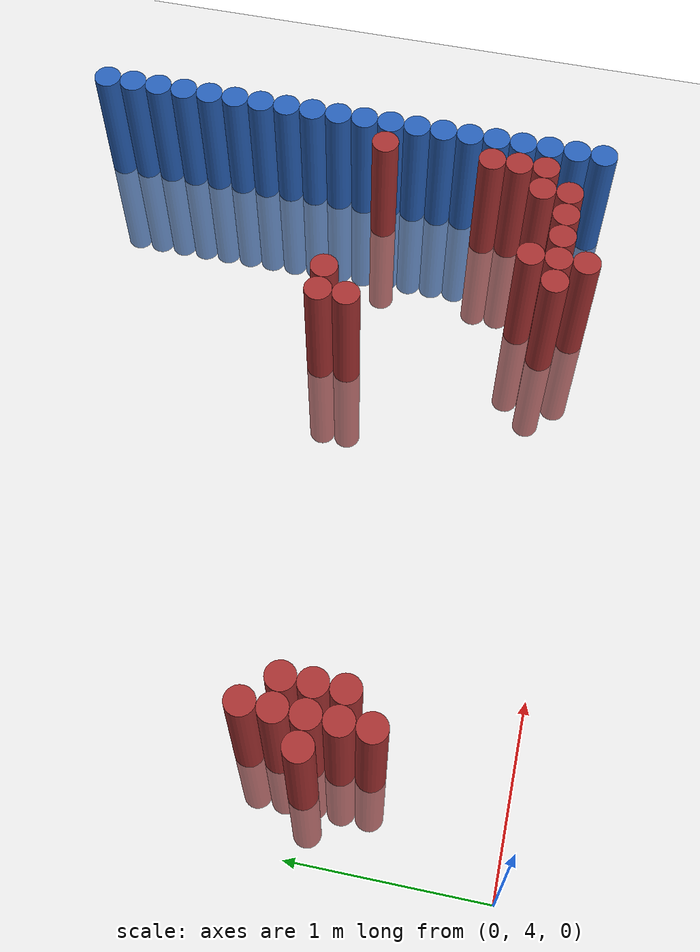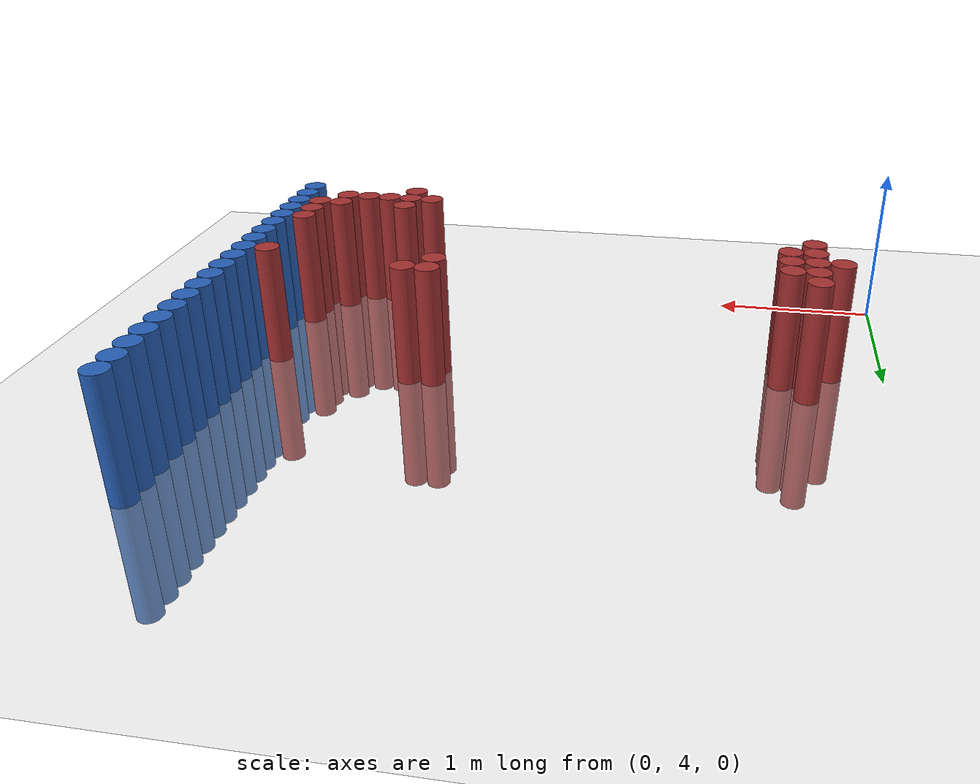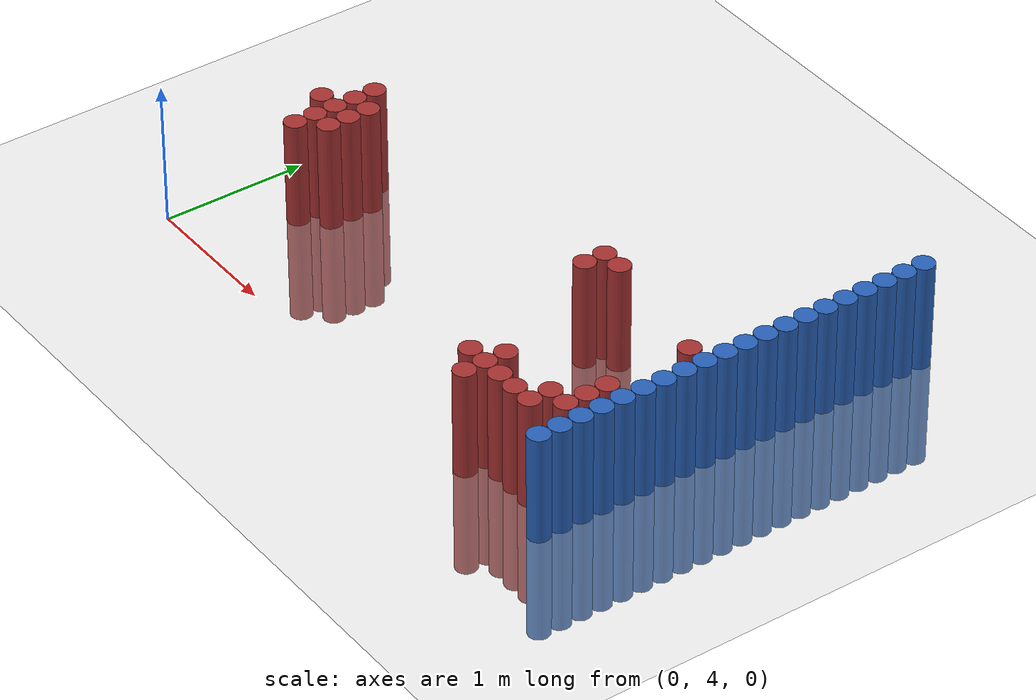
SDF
<sdf version="1.6">
 <world name="default">
  <model name="ground_plane">
   <static>1</static>
   <link name="link">
    <collision name="collision">
     <geometry><plane><normal>0 0 1</normal><size>100 100</size></plane></geometry>
     <surface><friction><ode><mu>100</mu><mu2>50</mu2></ode></friction></surface>
    </collision>
    <visual name="visual">
     <cast_shadows>0</cast_shadows>
     <geometry><plane><normal>0 0 1</normal><size>100 100</size></plane></geometry>
     <material>
      <script><uri>file://media/materials/scripts/gazebo.material</uri><name>Gazebo/Grey</name></script>
     </material>
    </visual>
   </link>
  </model>
  <model name="unit_cylinder_168">
   <static>1</static>
   <pose>3.925000 4.075000 0.000000 0.000000 0.000000 0.000000</pose>
   <link name="link">
    <inertial>
     <mass>1</mass>
     <inertia><ixx>0.145833</ixx><ixy>0</ixy><ixz>0</ixz><iyy>0.145833</iyy><iyz>0</iyz><izz>0.125</izz></inertia>
    </inertial>
    <collision name="collision">
     <geometry><cylinder><radius>0.075000</radius><length>1.5</length></cylinder></geometry>
    </collision>
    <visual name="visual">
     <geometry><cylinder><radius>0.075000</radius><length>1.5</length></cylinder></geometry>
     <material>
      <ambient>0.152000 0.379000 0.720000 1</ambient>
      <diffuse>0.152000 0.379000 0.720000 1</diffuse>
     </material>
     <material>
      <script><name>Gazebo/Grey</name><uri>file://media/materials/scripts/gazebo.material</uri></script>
     </material>
    </visual>
   </link>
  </model>
  <model name="unit_cylinder_170">
   <static>1</static>
   <pose>3.925000 4.225000 0.000000 0.000000 0.000000 0.000000</pose>
   <link name="link">
    <inertial>
     <mass>1</mass>
     <inertia><ixx>0.145833</ixx><ixy>0</ixy><ixz>0</ixz><iyy>0.145833</iyy><iyz>0</iyz><izz>0.125</izz></inertia>
    </inertial>
    <collision name="collision">
     <geometry><cylinder><radius>0.075000</radius><length>1.5</length></cylinder></geometry>
    </collision>
    <visual name="visual">
     <geometry><cylinder><radius>0.075000</radius><length>1.5</length></cylinder></geometry>
     <material>
      <ambient>0.152000 0.379000 0.720000 1</ambient>
      <diffuse>0.152000 0.379000 0.720000 1</diffuse>
     </material>
     <material>
      <script><name>Gazebo/Grey</name><uri>file://media/materials/scripts/gazebo.material</uri></script>
     </material>
    </visual>
   </link>
  </model>
  <model name="unit_cylinder_172">
   <static>1</static>
   <pose>3.925000 4.375000 0.000000 0.000000 0.000000 0.000000</pose>
   <link name="link">
    <inertial>
     <mass>1</mass>
     <inertia><ixx>0.145833</ixx><ixy>0</ixy><ixz>0</ixz><iyy>0.145833</iyy><iyz>0</iyz><izz>0.125</izz></inertia>
    </inertial>
    <collision name="collision">
     <geometry><cylinder><radius>0.075000</radius><length>1.5</length></cylinder></geometry>
    </collision>
    <visual name="visual">
     <geometry><cylinder><radius>0.075000</radius><length>1.5</length></cylinder></geometry>
     <material>
      <ambient>0.152000 0.379000 0.720000 1</ambient>
      <diffuse>0.152000 0.379000 0.720000 1</diffuse>
     </material>
     <material>
      <script><name>Gazebo/Grey</name><uri>file://media/materials/scripts/gazebo.material</uri></script>
     </material>
    </visual>
   </link>
  </model>
  <model name="unit_cylinder_174">
   <static>1</static>
   <pose>3.925000 4.525000 0.000000 0.000000 0.000000 0.000000</pose>
   <link name="link">
    <inertial>
     <mass>1</mass>
     <inertia><ixx>0.145833</ixx><ixy>0</ixy><ixz>0</ixz><iyy>0.145833</iyy><iyz>0</iyz><izz>0.125</izz></inertia>
    </inertial>
    <collision name="collision">
     <geometry><cylinder><radius>0.075000</radius><length>1.5</length></cylinder></geometry>
    </collision>
    <visual name="visual">
     <geometry><cylinder><radius>0.075000</radius><length>1.5</length></cylinder></geometry>
     <material>
      <ambient>0.152000 0.379000 0.720000 1</ambient>
      <diffuse>0.152000 0.379000 0.720000 1</diffuse>
     </material>
     <material>
      <script><name>Gazebo/Grey</name><uri>file://media/materials/scripts/gazebo.material</uri></script>
     </material>
    </visual>
   </link>
  </model>
  <model name="unit_cylinder_176">
   <static>1</static>
   <pose>3.925000 4.675000 0.000000 0.000000 0.000000 0.000000</pose>
   <link name="link">
    <inertial>
     <mass>1</mass>
     <inertia><ixx>0.145833</ixx><ixy>0</ixy><ixz>0</ixz><iyy>0.145833</iyy><iyz>0</iyz><izz>0.125</izz></inertia>
    </inertial>
    <collision name="collision">
     <geometry><cylinder><radius>0.075000</radius><length>1.5</length></cylinder></geometry>
    </collision>
    <visual name="visual">
     <geometry><cylinder><radius>0.075000</radius><length>1.5</length></cylinder></geometry>
     <material>
      <ambient>0.152000 0.379000 0.720000 1</ambient>
      <diffuse>0.152000 0.379000 0.720000 1</diffuse>
     </material>
     <material>
      <script><name>Gazebo/Grey</name><uri>file://media/materials/scripts/gazebo.material</uri></script>
     </material>
    </visual>
   </link>
  </model>
  <model name="unit_cylinder_178">
   <static>1</static>
   <pose>3.925000 4.825000 0.000000 0.000000 0.000000 0.000000</pose>
   <link name="link">
    <inertial>
     <mass>1</mass>
     <inertia><ixx>0.145833</ixx><ixy>0</ixy><ixz>0</ixz><iyy>0.145833</iyy><iyz>0</iyz><izz>0.125</izz></inertia>
    </inertial>
    <collision name="collision">
     <geometry><cylinder><radius>0.075000</radius><length>1.5</length></cylinder></geometry>
    </collision>
    <visual name="visual">
     <geometry><cylinder><radius>0.075000</radius><length>1.5</length></cylinder></geometry>
     <material>
      <ambient>0.152000 0.379000 0.720000 1</ambient>
      <diffuse>0.152000 0.379000 0.720000 1</diffuse>
     </material>
     <material>
      <script><name>Gazebo/Grey</name><uri>file://media/materials/scripts/gazebo.material</uri></script>
     </material>
    </visual>
   </link>
  </model>
  <model name="unit_cylinder_180">
   <static>1</static>
   <pose>3.925000 4.975000 0.000000 0.000000 0.000000 0.000000</pose>
   <link name="link">
    <inertial>
     <mass>1</mass>
     <inertia><ixx>0.145833</ixx><ixy>0</ixy><ixz>0</ixz><iyy>0.145833</iyy><iyz>0</iyz><izz>0.125</izz></inertia>
    </inertial>
    <collision name="collision">
     <geometry><cylinder><radius>0.075000</radius><length>1.5</length></cylinder></geometry>
    </collision>
    <visual name="visual">
     <geometry><cylinder><radius>0.075000</radius><length>1.5</length></cylinder></geometry>
     <material>
      <ambient>0.152000 0.379000 0.720000 1</ambient>
      <diffuse>0.152000 0.379000 0.720000 1</diffuse>
     </material>
     <material>
      <script><name>Gazebo/Grey</name><uri>file://media/materials/scripts/gazebo.material</uri></script>
     </material>
    </visual>
   </link>
  </model>
  <model name="unit_cylinder_182">
   <static>1</static>
   <pose>3.925000 5.125000 0.000000 0.000000 0.000000 0.000000</pose>
   <link name="link">
    <inertial>
     <mass>1</mass>
     <inertia><ixx>0.145833</ixx><ixy>0</ixy><ixz>0</ixz><iyy>0.145833</iyy><iyz>0</iyz><izz>0.125</izz></inertia>
    </inertial>
    <collision name="collision">
     <geometry><cylinder><radius>0.075000</radius><length>1.5</length></cylinder></geometry>
    </collision>
    <visual name="visual">
     <geometry><cylinder><radius>0.075000</radius><length>1.5</length></cylinder></geometry>
     <material>
      <ambient>0.152000 0.379000 0.720000 1</ambient>
      <diffuse>0.152000 0.379000 0.720000 1</diffuse>
     </material>
     <material>
      <script><name>Gazebo/Grey</name><uri>file://media/materials/scripts/gazebo.material</uri></script>
     </material>
    </visual>
   </link>
  </model>
  <model name="unit_cylinder_184">
   <static>1</static>
   <pose>3.925000 5.275000 0.000000 0.000000 0.000000 0.000000</pose>
   <link name="link">
    <inertial>
     <mass>1</mass>
     <inertia><ixx>0.145833</ixx><ixy>0</ixy><ixz>0</ixz><iyy>0.145833</iyy><iyz>0</iyz><izz>0.125</izz></inertia>
    </inertial>
    <collision name="collision">
     <geometry><cylinder><radius>0.075000</radius><length>1.5</length></cylinder></geometry>
    </collision>
    <visual name="visual">
     <geometry><cylinder><radius>0.075000</radius><length>1.5</length></cylinder></geometry>
     <material>
      <ambient>0.152000 0.379000 0.720000 1</ambient>
      <diffuse>0.152000 0.379000 0.720000 1</diffuse>
     </material>
     <material>
      <script><name>Gazebo/Grey</name><uri>file://media/materials/scripts/gazebo.material</uri></script>
     </material>
    </visual>
   </link>
  </model>
  <model name="unit_cylinder_186">
   <static>1</static>
   <pose>3.925000 5.425000 0.000000 0.000000 0.000000 0.000000</pose>
   <link name="link">
    <inertial>
     <mass>1</mass>
     <inertia><ixx>0.145833</ixx><ixy>0</ixy><ixz>0</ixz><iyy>0.145833</iyy><iyz>0</iyz><izz>0.125</izz></inertia>
    </inertial>
    <collision name="collision">
     <geometry><cylinder><radius>0.075000</radius><length>1.5</length></cylinder></geometry>
    </collision>
    <visual name="visual">
     <geometry><cylinder><radius>0.075000</radius><length>1.5</length></cylinder></geometry>
     <material>
      <ambient>0.152000 0.379000 0.720000 1</ambient>
      <diffuse>0.152000 0.379000 0.720000 1</diffuse>
     </material>
     <material>
      <script><name>Gazebo/Grey</name><uri>file://media/materials/scripts/gazebo.material</uri></script>
     </material>
    </visual>
   </link>
  </model>
  <model name="unit_cylinder_188">
   <static>1</static>
   <pose>3.925000 5.575000 0.000000 0.000000 0.000000 0.000000</pose>
   <link name="link">
    <inertial>
     <mass>1</mass>
     <inertia><ixx>0.145833</ixx><ixy>0</ixy><ixz>0</ixz><iyy>0.145833</iyy><iyz>0</iyz><izz>0.125</izz></inertia>
    </inertial>
    <collision name="collision">
     <geometry><cylinder><radius>0.075000</radius><length>1.5</length></cylinder></geometry>
    </collision>
    <visual name="visual">
     <geometry><cylinder><radius>0.075000</radius><length>1.5</length></cylinder></geometry>
     <material>
      <ambient>0.152000 0.379000 0.720000 1</ambient>
      <diffuse>0.152000 0.379000 0.720000 1</diffuse>
     </material>
     <material>
      <script><name>Gazebo/Grey</name><uri>file://media/materials/scripts/gazebo.material</uri></script>
     </material>
    </visual>
   </link>
  </model>
  <model name="unit_cylinder_190">
   <static>1</static>
   <pose>3.925000 5.725000 0.000000 0.000000 0.000000 0.000000</pose>
   <link name="link">
    <inertial>
     <mass>1</mass>
     <inertia><ixx>0.145833</ixx><ixy>0</ixy><ixz>0</ixz><iyy>0.145833</iyy><iyz>0</iyz><izz>0.125</izz></inertia>
    </inertial>
    <collision name="collision">
     <geometry><cylinder><radius>0.075000</radius><length>1.5</length></cylinder></geometry>
    </collision>
    <visual name="visual">
     <geometry><cylinder><radius>0.075000</radius><length>1.5</length></cylinder></geometry>
     <material>
      <ambient>0.152000 0.379000 0.720000 1</ambient>
      <diffuse>0.152000 0.379000 0.720000 1</diffuse>
     </material>
     <material>
      <script><name>Gazebo/Grey</name><uri>file://media/materials/scripts/gazebo.material</uri></script>
     </material>
    </visual>
   </link>
  </model>
  <model name="unit_cylinder_192">
   <static>1</static>
   <pose>3.925000 5.875000 0.000000 0.000000 0.000000 0.000000</pose>
   <link name="link">
    <inertial>
     <mass>1</mass>
     <inertia><ixx>0.145833</ixx><ixy>0</ixy><ixz>0</ixz><iyy>0.145833</iyy><iyz>0</iyz><izz>0.125</izz></inertia>
    </inertial>
    <collision name="collision">
     <geometry><cylinder><radius>0.075000</radius><length>1.5</length></cylinder></geometry>
    </collision>
    <visual name="visual">
     <geometry><cylinder><radius>0.075000</radius><length>1.5</length></cylinder></geometry>
     <material>
      <ambient>0.152000 0.379000 0.720000 1</ambient>
      <diffuse>0.152000 0.379000 0.720000 1</diffuse>
     </material>
     <material>
      <script><name>Gazebo/Grey</name><uri>file://media/materials/scripts/gazebo.material</uri></script>
     </material>
    </visual>
   </link>
  </model>
  <model name="unit_cylinder_194">
   <static>1</static>
   <pose>3.925000 6.025000 0.000000 0.000000 0.000000 0.000000</pose>
   <link name="link">
    <inertial>
     <mass>1</mass>
     <inertia><ixx>0.145833</ixx><ixy>0</ixy><ixz>0</ixz><iyy>0.145833</iyy><iyz>0</iyz><izz>0.125</izz></inertia>
    </inertial>
    <collision name="collision">
     <geometry><cylinder><radius>0.075000</radius><length>1.5</length></cylinder></geometry>
    </collision>
    <visual name="visual">
     <geometry><cylinder><radius>0.075000</radius><length>1.5</length></cylinder></geometry>
     <material>
      <ambient>0.152000 0.379000 0.720000 1</ambient>
      <diffuse>0.152000 0.379000 0.720000 1</diffuse>
     </material>
     <material>
      <script><name>Gazebo/Grey</name><uri>file://media/materials/scripts/gazebo.material</uri></script>
     </material>
    </visual>
   </link>
  </model>
  <model name="unit_cylinder_196">
   <static>1</static>
   <pose>3.925000 6.175000 0.000000 0.000000 0.000000 0.000000</pose>
   <link name="link">
    <inertial>
     <mass>1</mass>
     <inertia><ixx>0.145833</ixx><ixy>0</ixy><ixz>0</ixz><iyy>0.145833</iyy><iyz>0</iyz><izz>0.125</izz></inertia>
    </inertial>
    <collision name="collision">
     <geometry><cylinder><radius>0.075000</radius><length>1.5</length></cylinder></geometry>
    </collision>
    <visual name="visual">
     <geometry><cylinder><radius>0.075000</radius><length>1.5</length></cylinder></geometry>
     <material>
      <ambient>0.152000 0.379000 0.720000 1</ambient>
      <diffuse>0.152000 0.379000 0.720000 1</diffuse>
     </material>
     <material>
      <script><name>Gazebo/Grey</name><uri>file://media/materials/scripts/gazebo.material</uri></script>
     </material>
    </visual>
   </link>
  </model>
  <model name="unit_cylinder_198">
   <static>1</static>
   <pose>3.925000 6.325000 0.000000 0.000000 0.000000 0.000000</pose>
   <link name="link">
    <inertial>
     <mass>1</mass>
     <inertia><ixx>0.145833</ixx><ixy>0</ixy><ixz>0</ixz><iyy>0.145833</iyy><iyz>0</iyz><izz>0.125</izz></inertia>
    </inertial>
    <collision name="collision">
     <geometry><cylinder><radius>0.075000</radius><length>1.5</length></cylinder></geometry>
    </collision>
    <visual name="visual">
     <geometry><cylinder><radius>0.075000</radius><length>1.5</length></cylinder></geometry>
     <material>
      <ambient>0.152000 0.379000 0.720000 1</ambient>
      <diffuse>0.152000 0.379000 0.720000 1</diffuse>
     </material>
     <material>
      <script><name>Gazebo/Grey</name><uri>file://media/materials/scripts/gazebo.material</uri></script>
     </material>
    </visual>
   </link>
  </model>
  <model name="unit_cylinder_200">
   <static>1</static>
   <pose>3.925000 6.475000 0.000000 0.000000 0.000000 0.000000</pose>
   <link name="link">
    <inertial>
     <mass>1</mass>
     <inertia><ixx>0.145833</ixx><ixy>0</ixy><ixz>0</ixz><iyy>0.145833</iyy><iyz>0</iyz><izz>0.125</izz></inertia>
    </inertial>
    <collision name="collision">
     <geometry><cylinder><radius>0.075000</radius><length>1.5</length></cylinder></geometry>
    </collision>
    <visual name="visual">
     <geometry><cylinder><radius>0.075000</radius><length>1.5</length></cylinder></geometry>
     <material>
      <ambient>0.152000 0.379000 0.720000 1</ambient>
      <diffuse>0.152000 0.379000 0.720000 1</diffuse>
     </material>
     <material>
      <script><name>Gazebo/Grey</name><uri>file://media/materials/scripts/gazebo.material</uri></script>
     </material>
    </visual>
   </link>
  </model>
  <model name="unit_cylinder_202">
   <static>1</static>
   <pose>3.925000 6.625000 0.000000 0.000000 0.000000 0.000000</pose>
   <link name="link">
    <inertial>
     <mass>1</mass>
     <inertia><ixx>0.145833</ixx><ixy>0</ixy><ixz>0</ixz><iyy>0.145833</iyy><iyz>0</iyz><izz>0.125</izz></inertia>
    </inertial>
    <collision name="collision">
     <geometry><cylinder><radius>0.075000</radius><length>1.5</length></cylinder></geometry>
    </collision>
    <visual name="visual">
     <geometry><cylinder><radius>0.075000</radius><length>1.5</length></cylinder></geometry>
     <material>
      <ambient>0.152000 0.379000 0.720000 1</ambient>
      <diffuse>0.152000 0.379000 0.720000 1</diffuse>
     </material>
     <material>
      <script><name>Gazebo/Grey</name><uri>file://media/materials/scripts/gazebo.material</uri></script>
     </material>
    </visual>
   </link>
  </model>
  <model name="unit_cylinder_204">
   <static>1</static>
   <pose>3.925000 6.775000 0.000000 0.000000 0.000000 0.000000</pose>
   <link name="link">
    <inertial>
     <mass>1</mass>
     <inertia><ixx>0.145833</ixx><ixy>0</ixy><ixz>0</ixz><iyy>0.145833</iyy><iyz>0</iyz><izz>0.125</izz></inertia>
    </inertial>
    <collision name="collision">
     <geometry><cylinder><radius>0.075000</radius><length>1.5</length></cylinder></geometry>
    </collision>
    <visual name="visual">
     <geometry><cylinder><radius>0.075000</radius><length>1.5</length></cylinder></geometry>
     <material>
      <ambient>0.152000 0.379000 0.720000 1</ambient>
      <diffuse>0.152000 0.379000 0.720000 1</diffuse>
     </material>
     <material>
      <script><name>Gazebo/Grey</name><uri>file://media/materials/scripts/gazebo.material</uri></script>
     </material>
    </visual>
   </link>
  </model>
  <model name="unit_cylinder_206">
   <static>1</static>
   <pose>3.925000 6.925000 0.000000 0.000000 0.000000 0.000000</pose>
   <link name="link">
    <inertial>
     <mass>1</mass>
     <inertia><ixx>0.145833</ixx><ixy>0</ixy><ixz>0</ixz><iyy>0.145833</iyy><iyz>0</iyz><izz>0.125</izz></inertia>
    </inertial>
    <collision name="collision">
     <geometry><cylinder><radius>0.075000</radius><length>1.5</length></cylinder></geometry>
    </collision>
    <visual name="visual">
     <geometry><cylinder><radius>0.075000</radius><length>1.5</length></cylinder></geometry>
     <material>
      <ambient>0.152000 0.379000 0.720000 1</ambient>
      <diffuse>0.152000 0.379000 0.720000 1</diffuse>
     </material>
     <material>
      <script><name>Gazebo/Grey</name><uri>file://media/materials/scripts/gazebo.material</uri></script>
     </material>
    </visual>
   </link>
  </model>
  <model name="unit_cylinder_339">
   <static>1</static>
   <pose>0.325000 4.975000 0.000000 0.000000 0.000000 0.000000</pose>
   <link name="link">
    <inertial>
     <mass>1</mass>
     <inertia><ixx>0.145833</ixx><ixy>0</ixy><ixz>0</ixz><iyy>0.145833</iyy><iyz>0</iyz><izz>0.125</izz></inertia>
    </inertial>
    <collision name="collision">
     <geometry><cylinder><radius>0.075000</radius><length>1.5</length></cylinder></geometry>
    </collision>
    <visual name="visual">
     <geometry><cylinder><radius>0.075000</radius><length>1.5</length></cylinder></geometry>
     <material>
      <ambient>0.648000 0.192000 0.192000 1</ambient>
      <diffuse>0.648000 0.192000 0.192000 1</diffuse>
     </material>
     <material>
      <script><name>Gazebo/Grey</name><uri>file://media/materials/scripts/gazebo.material</uri></script>
     </material>
    </visual>
   </link>
  </model>
  <model name="unit_cylinder_347">
   <static>1</static>
   <pose>0.475000 4.675000 0.000000 0.000000 0.000000 0.000000</pose>
   <link name="link">
    <inertial>
     <mass>1</mass>
     <inertia><ixx>0.145833</ixx><ixy>0</ixy><ixz>0</ixz><iyy>0.145833</iyy><iyz>0</iyz><izz>0.125</izz></inertia>
    </inertial>
    <collision name="collision">
     <geometry><cylinder><radius>0.075000</radius><length>1.5</length></cylinder></geometry>
    </collision>
    <visual name="visual">
     <geometry><cylinder><radius>0.075000</radius><length>1.5</length></cylinder></geometry>
     <material>
      <ambient>0.648000 0.192000 0.192000 1</ambient>
      <diffuse>0.648000 0.192000 0.192000 1</diffuse>
     </material>
     <material>
      <script><name>Gazebo/Grey</name><uri>file://media/materials/scripts/gazebo.material</uri></script>
     </material>
    </visual>
   </link>
  </model>
  <model name="unit_cylinder_348">
   <static>1</static>
   <pose>0.475000 4.825000 0.000000 0.000000 0.000000 0.000000</pose>
   <link name="link">
    <inertial>
     <mass>1</mass>
     <inertia><ixx>0.145833</ixx><ixy>0</ixy><ixz>0</ixz><iyy>0.145833</iyy><iyz>0</iyz><izz>0.125</izz></inertia>
    </inertial>
    <collision name="collision">
     <geometry><cylinder><radius>0.075000</radius><length>1.5</length></cylinder></geometry>
    </collision>
    <visual name="visual">
     <geometry><cylinder><radius>0.075000</radius><length>1.5</length></cylinder></geometry>
     <material>
      <ambient>0.648000 0.192000 0.192000 1</ambient>
      <diffuse>0.648000 0.192000 0.192000 1</diffuse>
     </material>
     <material>
      <script><name>Gazebo/Grey</name><uri>file://media/materials/scripts/gazebo.material</uri></script>
     </material>
    </visual>
   </link>
  </model>
  <model name="unit_cylinder_349">
   <static>1</static>
   <pose>0.475000 4.975000 0.000000 0.000000 0.000000 0.000000</pose>
   <link name="link">
    <inertial>
     <mass>1</mass>
     <inertia><ixx>0.145833</ixx><ixy>0</ixy><ixz>0</ixz><iyy>0.145833</iyy><iyz>0</iyz><izz>0.125</izz></inertia>
    </inertial>
    <collision name="collision">
     <geometry><cylinder><radius>0.075000</radius><length>1.5</length></cylinder></geometry>
    </collision>
    <visual name="visual">
     <geometry><cylinder><radius>0.075000</radius><length>1.5</length></cylinder></geometry>
     <material>
      <ambient>0.648000 0.192000 0.192000 1</ambient>
      <diffuse>0.648000 0.192000 0.192000 1</diffuse>
     </material>
     <material>
      <script><name>Gazebo/Grey</name><uri>file://media/materials/scripts/gazebo.material</uri></script>
     </material>
    </visual>
   </link>
  </model>
  <model name="unit_cylinder_350">
   <static>1</static>
   <pose>0.475000 5.125000 0.000000 0.000000 0.000000 0.000000</pose>
   <link name="link">
    <inertial>
     <mass>1</mass>
     <inertia><ixx>0.145833</ixx><ixy>0</ixy><ixz>0</ixz><iyy>0.145833</iyy><iyz>0</iyz><izz>0.125</izz></inertia>
    </inertial>
    <collision name="collision">
     <geometry><cylinder><radius>0.075000</radius><length>1.5</length></cylinder></geometry>
    </collision>
    <visual name="visual">
     <geometry><cylinder><radius>0.075000</radius><length>1.5</length></cylinder></geometry>
     <material>
      <ambient>0.648000 0.192000 0.192000 1</ambient>
      <diffuse>0.648000 0.192000 0.192000 1</diffuse>
     </material>
     <material>
      <script><name>Gazebo/Grey</name><uri>file://media/materials/scripts/gazebo.material</uri></script>
     </material>
    </visual>
   </link>
  </model>
  <model name="unit_cylinder_351">
   <static>1</static>
   <pose>0.475000 5.275000 0.000000 0.000000 0.000000 0.000000</pose>
   <link name="link">
    <inertial>
     <mass>1</mass>
     <inertia><ixx>0.145833</ixx><ixy>0</ixy><ixz>0</ixz><iyy>0.145833</iyy><iyz>0</iyz><izz>0.125</izz></inertia>
    </inertial>
    <collision name="collision">
     <geometry><cylinder><radius>0.075000</radius><length>1.5</length></cylinder></geometry>
    </collision>
    <visual name="visual">
     <geometry><cylinder><radius>0.075000</radius><length>1.5</length></cylinder></geometry>
     <material>
      <ambient>0.648000 0.192000 0.192000 1</ambient>
      <diffuse>0.648000 0.192000 0.192000 1</diffuse>
     </material>
     <material>
      <script><name>Gazebo/Grey</name><uri>file://media/materials/scripts/gazebo.material</uri></script>
     </material>
    </visual>
   </link>
  </model>
  <model name="unit_cylinder_362">
   <static>1</static>
   <pose>0.625000 4.825000 0.000000 0.000000 0.000000 0.000000</pose>
   <link name="link">
    <inertial>
     <mass>1</mass>
     <inertia><ixx>0.145833</ixx><ixy>0</ixy><ixz>0</ixz><iyy>0.145833</iyy><iyz>0</iyz><izz>0.125</izz></inertia>
    </inertial>
    <collision name="collision">
     <geometry><cylinder><radius>0.075000</radius><length>1.5</length></cylinder></geometry>
    </collision>
    <visual name="visual">
     <geometry><cylinder><radius>0.075000</radius><length>1.5</length></cylinder></geometry>
     <material>
      <ambient>0.648000 0.192000 0.192000 1</ambient>
      <diffuse>0.648000 0.192000 0.192000 1</diffuse>
     </material>
     <material>
      <script><name>Gazebo/Grey</name><uri>file://media/materials/scripts/gazebo.material</uri></script>
     </material>
    </visual>
   </link>
  </model>
  <model name="unit_cylinder_363">
   <static>1</static>
   <pose>0.625000 4.975000 0.000000 0.000000 0.000000 0.000000</pose>
   <link name="link">
    <inertial>
     <mass>1</mass>
     <inertia><ixx>0.145833</ixx><ixy>0</ixy><ixz>0</ixz><iyy>0.145833</iyy><iyz>0</iyz><izz>0.125</izz></inertia>
    </inertial>
    <collision name="collision">
     <geometry><cylinder><radius>0.075000</radius><length>1.5</length></cylinder></geometry>
    </collision>
    <visual name="visual">
     <geometry><cylinder><radius>0.075000</radius><length>1.5</length></cylinder></geometry>
     <material>
      <ambient>0.648000 0.192000 0.192000 1</ambient>
      <diffuse>0.648000 0.192000 0.192000 1</diffuse>
     </material>
     <material>
      <script><name>Gazebo/Grey</name><uri>file://media/materials/scripts/gazebo.material</uri></script>
     </material>
    </visual>
   </link>
  </model>
  <model name="unit_cylinder_364">
   <static>1</static>
   <pose>0.625000 5.125000 0.000000 0.000000 0.000000 0.000000</pose>
   <link name="link">
    <inertial>
     <mass>1</mass>
     <inertia><ixx>0.145833</ixx><ixy>0</ixy><ixz>0</ixz><iyy>0.145833</iyy><iyz>0</iyz><izz>0.125</izz></inertia>
    </inertial>
    <collision name="collision">
     <geometry><cylinder><radius>0.075000</radius><length>1.5</length></cylinder></geometry>
    </collision>
    <visual name="visual">
     <geometry><cylinder><radius>0.075000</radius><length>1.5</length></cylinder></geometry>
     <material>
      <ambient>0.648000 0.192000 0.192000 1</ambient>
      <diffuse>0.648000 0.192000 0.192000 1</diffuse>
     </material>
     <material>
      <script><name>Gazebo/Grey</name><uri>file://media/materials/scripts/gazebo.material</uri></script>
     </material>
    </visual>
   </link>
  </model>
  <model name="unit_cylinder_429">
   <static>1</static>
   <pose>2.725000 5.275000 0.000000 0.000000 0.000000 0.000000</pose>
   <link name="link">
    <inertial>
     <mass>1</mass>
     <inertia><ixx>0.145833</ixx><ixy>0</ixy><ixz>0</ixz><iyy>0.145833</iyy><iyz>0</iyz><izz>0.125</izz></inertia>
    </inertial>
    <collision name="collision">
     <geometry><cylinder><radius>0.075000</radius><length>1.5</length></cylinder></geometry>
    </collision>
    <visual name="visual">
     <geometry><cylinder><radius>0.075000</radius><length>1.5</length></cylinder></geometry>
     <material>
      <ambient>0.648000 0.192000 0.192000 1</ambient>
      <diffuse>0.648000 0.192000 0.192000 1</diffuse>
     </material>
     <material>
      <script><name>Gazebo/Grey</name><uri>file://media/materials/scripts/gazebo.material</uri></script>
     </material>
    </visual>
   </link>
  </model>
  <model name="unit_cylinder_430">
   <static>1</static>
   <pose>2.725000 5.425000 0.000000 0.000000 0.000000 0.000000</pose>
   <link name="link">
    <inertial>
     <mass>1</mass>
     <inertia><ixx>0.145833</ixx><ixy>0</ixy><ixz>0</ixz><iyy>0.145833</iyy><iyz>0</iyz><izz>0.125</izz></inertia>
    </inertial>
    <collision name="collision">
     <geometry><cylinder><radius>0.075000</radius><length>1.5</length></cylinder></geometry>
    </collision>
    <visual name="visual">
     <geometry><cylinder><radius>0.075000</radius><length>1.5</length></cylinder></geometry>
     <material>
      <ambient>0.648000 0.192000 0.192000 1</ambient>
      <diffuse>0.648000 0.192000 0.192000 1</diffuse>
     </material>
     <material>
      <script><name>Gazebo/Grey</name><uri>file://media/materials/scripts/gazebo.material</uri></script>
     </material>
    </visual>
   </link>
  </model>
  <model name="unit_cylinder_433">
   <static>1</static>
   <pose>2.875000 5.425000 0.000000 0.000000 0.000000 0.000000</pose>
   <link name="link">
    <inertial>
     <mass>1</mass>
     <inertia><ixx>0.145833</ixx><ixy>0</ixy><ixz>0</ixz><iyy>0.145833</iyy><iyz>0</iyz><izz>0.125</izz></inertia>
    </inertial>
    <collision name="collision">
     <geometry><cylinder><radius>0.075000</radius><length>1.5</length></cylinder></geometry>
    </collision>
    <visual name="visual">
     <geometry><cylinder><radius>0.075000</radius><length>1.5</length></cylinder></geometry>
     <material>
      <ambient>0.648000 0.192000 0.192000 1</ambient>
      <diffuse>0.648000 0.192000 0.192000 1</diffuse>
     </material>
     <material>
      <script><name>Gazebo/Grey</name><uri>file://media/materials/scripts/gazebo.material</uri></script>
     </material>
    </visual>
   </link>
  </model>
  <model name="unit_cylinder_438">
   <static>1</static>
   <pose>3.025000 4.225000 0.000000 0.000000 0.000000 0.000000</pose>
   <link name="link">
    <inertial>
     <mass>1</mass>
     <inertia><ixx>0.145833</ixx><ixy>0</ixy><ixz>0</ixz><iyy>0.145833</iyy><iyz>0</iyz><izz>0.125</izz></inertia>
    </inertial>
    <collision name="collision">
     <geometry><cylinder><radius>0.075000</radius><length>1.5</length></cylinder></geometry>
    </collision>
    <visual name="visual">
     <geometry><cylinder><radius>0.075000</radius><length>1.5</length></cylinder></geometry>
     <material>
      <ambient>0.648000 0.192000 0.192000 1</ambient>
      <diffuse>0.648000 0.192000 0.192000 1</diffuse>
     </material>
     <material>
      <script><name>Gazebo/Grey</name><uri>file://media/materials/scripts/gazebo.material</uri></script>
     </material>
    </visual>
   </link>
  </model>
  <model name="unit_cylinder_446">
   <static>1</static>
   <pose>3.175000 4.075000 0.000000 0.000000 0.000000 0.000000</pose>
   <link name="link">
    <inertial>
     <mass>1</mass>
     <inertia><ixx>0.145833</ixx><ixy>0</ixy><ixz>0</ixz><iyy>0.145833</iyy><iyz>0</iyz><izz>0.125</izz></inertia>
    </inertial>
    <collision name="collision">
     <geometry><cylinder><radius>0.075000</radius><length>1.5</length></cylinder></geometry>
    </collision>
    <visual name="visual">
     <geometry><cylinder><radius>0.075000</radius><length>1.5</length></cylinder></geometry>
     <material>
      <ambient>0.648000 0.192000 0.192000 1</ambient>
      <diffuse>0.648000 0.192000 0.192000 1</diffuse>
     </material>
     <material>
      <script><name>Gazebo/Grey</name><uri>file://media/materials/scripts/gazebo.material</uri></script>
     </material>
    </visual>
   </link>
  </model>
  <model name="unit_cylinder_447">
   <static>1</static>
   <pose>3.175000 4.225000 0.000000 0.000000 0.000000 0.000000</pose>
   <link name="link">
    <inertial>
     <mass>1</mass>
     <inertia><ixx>0.145833</ixx><ixy>0</ixy><ixz>0</ixz><iyy>0.145833</iyy><iyz>0</iyz><izz>0.125</izz></inertia>
    </inertial>
    <collision name="collision">
     <geometry><cylinder><radius>0.075000</radius><length>1.5</length></cylinder></geometry>
    </collision>
    <visual name="visual">
     <geometry><cylinder><radius>0.075000</radius><length>1.5</length></cylinder></geometry>
     <material>
      <ambient>0.648000 0.192000 0.192000 1</ambient>
      <diffuse>0.648000 0.192000 0.192000 1</diffuse>
     </material>
     <material>
      <script><name>Gazebo/Grey</name><uri>file://media/materials/scripts/gazebo.material</uri></script>
     </material>
    </visual>
   </link>
  </model>
  <model name="unit_cylinder_448">
   <static>1</static>
   <pose>3.175000 4.375000 0.000000 0.000000 0.000000 0.000000</pose>
   <link name="link">
    <inertial>
     <mass>1</mass>
     <inertia><ixx>0.145833</ixx><ixy>0</ixy><ixz>0</ixz><iyy>0.145833</iyy><iyz>0</iyz><izz>0.125</izz></inertia>
    </inertial>
    <collision name="collision">
     <geometry><cylinder><radius>0.075000</radius><length>1.5</length></cylinder></geometry>
    </collision>
    <visual name="visual">
     <geometry><cylinder><radius>0.075000</radius><length>1.5</length></cylinder></geometry>
     <material>
      <ambient>0.648000 0.192000 0.192000 1</ambient>
      <diffuse>0.648000 0.192000 0.192000 1</diffuse>
     </material>
     <material>
      <script><name>Gazebo/Grey</name><uri>file://media/materials/scripts/gazebo.material</uri></script>
     </material>
    </visual>
   </link>
  </model>
  <model name="unit_cylinder_455">
   <static>1</static>
   <pose>3.325000 4.225000 0.000000 0.000000 0.000000 0.000000</pose>
   <link name="link">
    <inertial>
     <mass>1</mass>
     <inertia><ixx>0.145833</ixx><ixy>0</ixy><ixz>0</ixz><iyy>0.145833</iyy><iyz>0</iyz><izz>0.125</izz></inertia>
    </inertial>
    <collision name="collision">
     <geometry><cylinder><radius>0.075000</radius><length>1.5</length></cylinder></geometry>
    </collision>
    <visual name="visual">
     <geometry><cylinder><radius>0.075000</radius><length>1.5</length></cylinder></geometry>
     <material>
      <ambient>0.648000 0.192000 0.192000 1</ambient>
      <diffuse>0.648000 0.192000 0.192000 1</diffuse>
     </material>
     <material>
      <script><name>Gazebo/Grey</name><uri>file://media/materials/scripts/gazebo.material</uri></script>
     </material>
    </visual>
   </link>
  </model>
  <model name="unit_cylinder_460">
   <static>1</static>
   <pose>3.475000 4.225000 0.000000 0.000000 0.000000 0.000000</pose>
   <link name="link">
    <inertial>
     <mass>1</mass>
     <inertia><ixx>0.145833</ixx><ixy>0</ixy><ixz>0</ixz><iyy>0.145833</iyy><iyz>0</iyz><izz>0.125</izz></inertia>
    </inertial>
    <collision name="collision">
     <geometry><cylinder><radius>0.075000</radius><length>1.5</length></cylinder></geometry>
    </collision>
    <visual name="visual">
     <geometry><cylinder><radius>0.075000</radius><length>1.5</length></cylinder></geometry>
     <material>
      <ambient>0.648000 0.192000 0.192000 1</ambient>
      <diffuse>0.648000 0.192000 0.192000 1</diffuse>
     </material>
     <material>
      <script><name>Gazebo/Grey</name><uri>file://media/materials/scripts/gazebo.material</uri></script>
     </material>
    </visual>
   </link>
  </model>
  <model name="unit_cylinder_466">
   <static>1</static>
   <pose>3.625000 4.225000 0.000000 0.000000 0.000000 0.000000</pose>
   <link name="link">
    <inertial>
     <mass>1</mass>
     <inertia><ixx>0.145833</ixx><ixy>0</ixy><ixz>0</ixz><iyy>0.145833</iyy><iyz>0</iyz><izz>0.125</izz></inertia>
    </inertial>
    <collision name="collision">
     <geometry><cylinder><radius>0.075000</radius><length>1.5</length></cylinder></geometry>
    </collision>
    <visual name="visual">
     <geometry><cylinder><radius>0.075000</radius><length>1.5</length></cylinder></geometry>
     <material>
      <ambient>0.648000 0.192000 0.192000 1</ambient>
      <diffuse>0.648000 0.192000 0.192000 1</diffuse>
     </material>
     <material>
      <script><name>Gazebo/Grey</name><uri>file://media/materials/scripts/gazebo.material</uri></script>
     </material>
    </visual>
   </link>
  </model>
  <model name="unit_cylinder_467">
   <static>1</static>
   <pose>3.625000 4.375000 0.000000 0.000000 0.000000 0.000000</pose>
   <link name="link">
    <inertial>
     <mass>1</mass>
     <inertia><ixx>0.145833</ixx><ixy>0</ixy><ixz>0</ixz><iyy>0.145833</iyy><iyz>0</iyz><izz>0.125</izz></inertia>
    </inertial>
    <collision name="collision">
     <geometry><cylinder><radius>0.075000</radius><length>1.5</length></cylinder></geometry>
    </collision>
    <visual name="visual">
     <geometry><cylinder><radius>0.075000</radius><length>1.5</length></cylinder></geometry>
     <material>
      <ambient>0.648000 0.192000 0.192000 1</ambient>
      <diffuse>0.648000 0.192000 0.192000 1</diffuse>
     </material>
     <material>
      <script><name>Gazebo/Grey</name><uri>file://media/materials/scripts/gazebo.material</uri></script>
     </material>
    </visual>
   </link>
  </model>
  <model name="unit_cylinder_483">
   <static>1</static>
   <pose>3.775000 4.375000 0.000000 0.000000 0.000000 0.000000</pose>
   <link name="link">
    <inertial>
     <mass>1</mass>
     <inertia><ixx>0.145833</ixx><ixy>0</ixy><ixz>0</ixz><iyy>0.145833</iyy><iyz>0</iyz><izz>0.125</izz></inertia>
    </inertial>
    <collision name="collision">
     <geometry><cylinder><radius>0.075000</radius><length>1.5</length></cylinder></geometry>
    </collision>
    <visual name="visual">
     <geometry><cylinder><radius>0.075000</radius><length>1.5</length></cylinder></geometry>
     <material>
      <ambient>0.648000 0.192000 0.192000 1</ambient>
      <diffuse>0.648000 0.192000 0.192000 1</diffuse>
     </material>
     <material>
      <script><name>Gazebo/Grey</name><uri>file://media/materials/scripts/gazebo.material</uri></script>
     </material>
    </visual>
   </link>
  </model>
  <model name="unit_cylinder_484">
   <static>1</static>
   <pose>3.775000 4.525000 0.000000 0.000000 0.000000 0.000000</pose>
   <link name="link">
    <inertial>
     <mass>1</mass>
     <inertia><ixx>0.145833</ixx><ixy>0</ixy><ixz>0</ixz><iyy>0.145833</iyy><iyz>0</iyz><izz>0.125</izz></inertia>
    </inertial>
    <collision name="collision">
     <geometry><cylinder><radius>0.075000</radius><length>1.5</length></cylinder></geometry>
    </collision>
    <visual name="visual">
     <geometry><cylinder><radius>0.075000</radius><length>1.5</length></cylinder></geometry>
     <material>
      <ambient>0.648000 0.192000 0.192000 1</ambient>
      <diffuse>0.648000 0.192000 0.192000 1</diffuse>
     </material>
     <material>
      <script><name>Gazebo/Grey</name><uri>file://media/materials/scripts/gazebo.material</uri></script>
     </material>
    </visual>
   </link>
  </model>
  <model name="unit_cylinder_485">
   <static>1</static>
   <pose>3.775000 4.675000 0.000000 0.000000 0.000000 0.000000</pose>
   <link name="link">
    <inertial>
     <mass>1</mass>
     <inertia><ixx>0.145833</ixx><ixy>0</ixy><ixz>0</ixz><iyy>0.145833</iyy><iyz>0</iyz><izz>0.125</izz></inertia>
    </inertial>
    <collision name="collision">
     <geometry><cylinder><radius>0.075000</radius><length>1.5</length></cylinder></geometry>
    </collision>
    <visual name="visual">
     <geometry><cylinder><radius>0.075000</radius><length>1.5</length></cylinder></geometry>
     <material>
      <ambient>0.648000 0.192000 0.192000 1</ambient>
      <diffuse>0.648000 0.192000 0.192000 1</diffuse>
     </material>
     <material>
      <script><name>Gazebo/Grey</name><uri>file://media/materials/scripts/gazebo.material</uri></script>
     </material>
    </visual>
   </link>
  </model>
  <model name="unit_cylinder_486">
   <static>1</static>
   <pose>3.775000 5.275000 0.000000 0.000000 0.000000 0.000000</pose>
   <link name="link">
    <inertial>
     <mass>1</mass>
     <inertia><ixx>0.145833</ixx><ixy>0</ixy><ixz>0</ixz><iyy>0.145833</iyy><iyz>0</iyz><izz>0.125</izz></inertia>
    </inertial>
    <collision name="collision">
     <geometry><cylinder><radius>0.075000</radius><length>1.5</length></cylinder></geometry>
    </collision>
    <visual name="visual">
     <geometry><cylinder><radius>0.075000</radius><length>1.5</length></cylinder></geometry>
     <material>
      <ambient>0.648000 0.192000 0.192000 1</ambient>
      <diffuse>0.648000 0.192000 0.192000 1</diffuse>
     </material>
     <material>
      <script><name>Gazebo/Grey</name><uri>file://media/materials/scripts/gazebo.material</uri></script>
     </material>
    </visual>
   </link>
  </model>
  <model name="unit_cylinder_527">
   <static>1</static>
   <pose>3.925000 4.075000 0.000000 0.000000 0.000000 0.000000</pose>
   <link name="link">
    <inertial>
     <mass>1</mass>
     <inertia><ixx>0.145833</ixx><ixy>0</ixy><ixz>0</ixz><iyy>0.145833</iyy><iyz>0</iyz><izz>0.125</izz></inertia>
    </inertial>
    <collision name="collision">
     <geometry><cylinder><radius>0.075000</radius><length>1.5</length></cylinder></geometry>
    </collision>
    <visual name="visual">
     <geometry><cylinder><radius>0.075000</radius><length>1.5</length></cylinder></geometry>
     <material>
      <ambient>0.152000 0.379000 0.720000 1</ambient>
      <diffuse>0.152000 0.379000 0.720000 1</diffuse>
     </material>
     <material>
      <script><name>Gazebo/Grey</name><uri>file://media/materials/scripts/gazebo.material</uri></script>
     </material>
    </visual>
   </link>
  </model>
  <model name="unit_cylinder_528">
   <static>1</static>
   <pose>3.925000 4.225000 0.000000 0.000000 0.000000 0.000000</pose>
   <link name="link">
    <inertial>
     <mass>1</mass>
     <inertia><ixx>0.145833</ixx><ixy>0</ixy><ixz>0</ixz><iyy>0.145833</iyy><iyz>0</iyz><izz>0.125</izz></inertia>
    </inertial>
    <collision name="collision">
     <geometry><cylinder><radius>0.075000</radius><length>1.5</length></cylinder></geometry>
    </collision>
    <visual name="visual">
     <geometry><cylinder><radius>0.075000</radius><length>1.5</length></cylinder></geometry>
     <material>
      <ambient>0.152000 0.379000 0.720000 1</ambient>
      <diffuse>0.152000 0.379000 0.720000 1</diffuse>
     </material>
     <material>
      <script><name>Gazebo/Grey</name><uri>file://media/materials/scripts/gazebo.material</uri></script>
     </material>
    </visual>
   </link>
  </model>
  <model name="unit_cylinder_529">
   <static>1</static>
   <pose>3.925000 4.375000 0.000000 0.000000 0.000000 0.000000</pose>
   <link name="link">
    <inertial>
     <mass>1</mass>
     <inertia><ixx>0.145833</ixx><ixy>0</ixy><ixz>0</ixz><iyy>0.145833</iyy><iyz>0</iyz><izz>0.125</izz></inertia>
    </inertial>
    <collision name="collision">
     <geometry><cylinder><radius>0.075000</radius><length>1.5</length></cylinder></geometry>
    </collision>
    <visual name="visual">
     <geometry><cylinder><radius>0.075000</radius><length>1.5</length></cylinder></geometry>
     <material>
      <ambient>0.152000 0.379000 0.720000 1</ambient>
      <diffuse>0.152000 0.379000 0.720000 1</diffuse>
     </material>
     <material>
      <script><name>Gazebo/Grey</name><uri>file://media/materials/scripts/gazebo.material</uri></script>
     </material>
    </visual>
   </link>
  </model>
  <model name="unit_cylinder_530">
   <static>1</static>
   <pose>3.925000 4.525000 0.000000 0.000000 0.000000 0.000000</pose>
   <link name="link">
    <inertial>
     <mass>1</mass>
     <inertia><ixx>0.145833</ixx><ixy>0</ixy><ixz>0</ixz><iyy>0.145833</iyy><iyz>0</iyz><izz>0.125</izz></inertia>
    </inertial>
    <collision name="collision">
     <geometry><cylinder><radius>0.075000</radius><length>1.5</length></cylinder></geometry>
    </collision>
    <visual name="visual">
     <geometry><cylinder><radius>0.075000</radius><length>1.5</length></cylinder></geometry>
     <material>
      <ambient>0.152000 0.379000 0.720000 1</ambient>
      <diffuse>0.152000 0.379000 0.720000 1</diffuse>
     </material>
     <material>
      <script><name>Gazebo/Grey</name><uri>file://media/materials/scripts/gazebo.material</uri></script>
     </material>
    </visual>
   </link>
  </model>
  <model name="unit_cylinder_531">
   <static>1</static>
   <pose>3.925000 4.675000 0.000000 0.000000 0.000000 0.000000</pose>
   <link name="link">
    <inertial>
     <mass>1</mass>
     <inertia><ixx>0.145833</ixx><ixy>0</ixy><ixz>0</ixz><iyy>0.145833</iyy><iyz>0</iyz><izz>0.125</izz></inertia>
    </inertial>
    <collision name="collision">
     <geometry><cylinder><radius>0.075000</radius><length>1.5</length></cylinder></geometry>
    </collision>
    <visual name="visual">
     <geometry><cylinder><radius>0.075000</radius><length>1.5</length></cylinder></geometry>
     <material>
      <ambient>0.152000 0.379000 0.720000 1</ambient>
      <diffuse>0.152000 0.379000 0.720000 1</diffuse>
     </material>
     <material>
      <script><name>Gazebo/Grey</name><uri>file://media/materials/scripts/gazebo.material</uri></script>
     </material>
    </visual>
   </link>
  </model>
  <model name="unit_cylinder_532">
   <static>1</static>
   <pose>3.925000 4.825000 0.000000 0.000000 0.000000 0.000000</pose>
   <link name="link">
    <inertial>
     <mass>1</mass>
     <inertia><ixx>0.145833</ixx><ixy>0</ixy><ixz>0</ixz><iyy>0.145833</iyy><iyz>0</iyz><izz>0.125</izz></inertia>
    </inertial>
    <collision name="collision">
     <geometry><cylinder><radius>0.075000</radius><length>1.5</length></cylinder></geometry>
    </collision>
    <visual name="visual">
     <geometry><cylinder><radius>0.075000</radius><length>1.5</length></cylinder></geometry>
     <material>
      <ambient>0.152000 0.379000 0.720000 1</ambient>
      <diffuse>0.152000 0.379000 0.720000 1</diffuse>
     </material>
     <material>
      <script><name>Gazebo/Grey</name><uri>file://media/materials/scripts/gazebo.material</uri></script>
     </material>
    </visual>
   </link>
  </model>
  <model name="unit_cylinder_533">
   <static>1</static>
   <pose>3.925000 4.975000 0.000000 0.000000 0.000000 0.000000</pose>
   <link name="link">
    <inertial>
     <mass>1</mass>
     <inertia><ixx>0.145833</ixx><ixy>0</ixy><ixz>0</ixz><iyy>0.145833</iyy><iyz>0</iyz><izz>0.125</izz></inertia>
    </inertial>
    <collision name="collision">
     <geometry><cylinder><radius>0.075000</radius><length>1.5</length></cylinder></geometry>
    </collision>
    <visual name="visual">
     <geometry><cylinder><radius>0.075000</radius><length>1.5</length></cylinder></geometry>
     <material>
      <ambient>0.152000 0.379000 0.720000 1</ambient>
      <diffuse>0.152000 0.379000 0.720000 1</diffuse>
     </material>
     <material>
      <script><name>Gazebo/Grey</name><uri>file://media/materials/scripts/gazebo.material</uri></script>
     </material>
    </visual>
   </link>
  </model>
  <model name="unit_cylinder_534">
   <static>1</static>
   <pose>3.925000 5.125000 0.000000 0.000000 0.000000 0.000000</pose>
   <link name="link">
    <inertial>
     <mass>1</mass>
     <inertia><ixx>0.145833</ixx><ixy>0</ixy><ixz>0</ixz><iyy>0.145833</iyy><iyz>0</iyz><izz>0.125</izz></inertia>
    </inertial>
    <collision name="collision">
     <geometry><cylinder><radius>0.075000</radius><length>1.5</length></cylinder></geometry>
    </collision>
    <visual name="visual">
     <geometry><cylinder><radius>0.075000</radius><length>1.5</length></cylinder></geometry>
     <material>
      <ambient>0.152000 0.379000 0.720000 1</ambient>
      <diffuse>0.152000 0.379000 0.720000 1</diffuse>
     </material>
     <material>
      <script><name>Gazebo/Grey</name><uri>file://media/materials/scripts/gazebo.material</uri></script>
     </material>
    </visual>
   </link>
  </model>
  <model name="unit_cylinder_535">
   <static>1</static>
   <pose>3.925000 5.275000 0.000000 0.000000 0.000000 0.000000</pose>
   <link name="link">
    <inertial>
     <mass>1</mass>
     <inertia><ixx>0.145833</ixx><ixy>0</ixy><ixz>0</ixz><iyy>0.145833</iyy><iyz>0</iyz><izz>0.125</izz></inertia>
    </inertial>
    <collision name="collision">
     <geometry><cylinder><radius>0.075000</radius><length>1.5</length></cylinder></geometry>
    </collision>
    <visual name="visual">
     <geometry><cylinder><radius>0.075000</radius><length>1.5</length></cylinder></geometry>
     <material>
      <ambient>0.152000 0.379000 0.720000 1</ambient>
      <diffuse>0.152000 0.379000 0.720000 1</diffuse>
     </material>
     <material>
      <script><name>Gazebo/Grey</name><uri>file://media/materials/scripts/gazebo.material</uri></script>
     </material>
    </visual>
   </link>
  </model>
  <model name="unit_cylinder_536">
   <static>1</static>
   <pose>3.925000 5.425000 0.000000 0.000000 0.000000 0.000000</pose>
   <link name="link">
    <inertial>
     <mass>1</mass>
     <inertia><ixx>0.145833</ixx><ixy>0</ixy><ixz>0</ixz><iyy>0.145833</iyy><iyz>0</iyz><izz>0.125</izz></inertia>
    </inertial>
    <collision name="collision">
     <geometry><cylinder><radius>0.075000</radius><length>1.5</length></cylinder></geometry>
    </collision>
    <visual name="visual">
     <geometry><cylinder><radius>0.075000</radius><length>1.5</length></cylinder></geometry>
     <material>
      <ambient>0.152000 0.379000 0.720000 1</ambient>
      <diffuse>0.152000 0.379000 0.720000 1</diffuse>
     </material>
     <material>
      <script><name>Gazebo/Grey</name><uri>file://media/materials/scripts/gazebo.material</uri></script>
     </material>
    </visual>
   </link>
  </model>
 </world>
</sdf>
